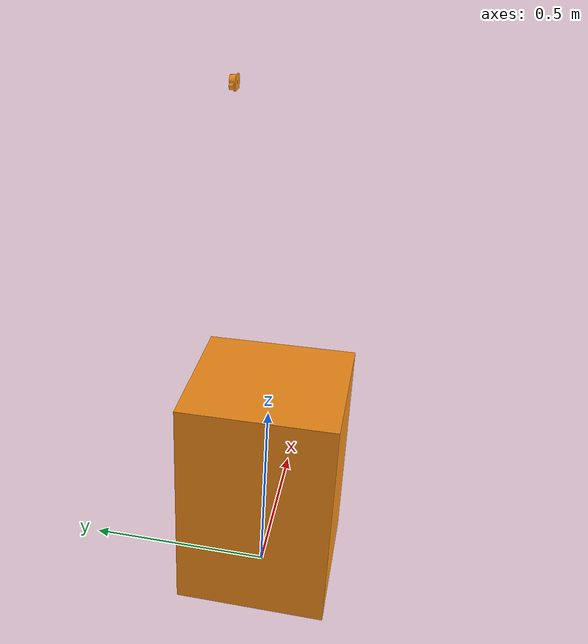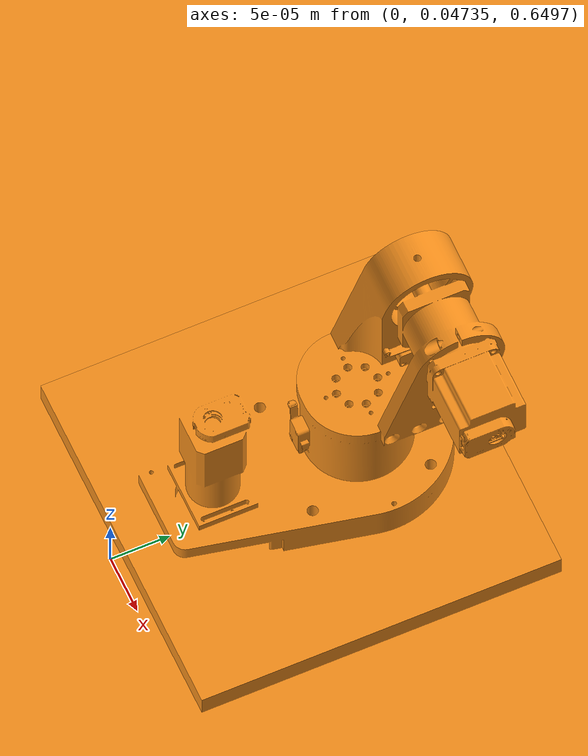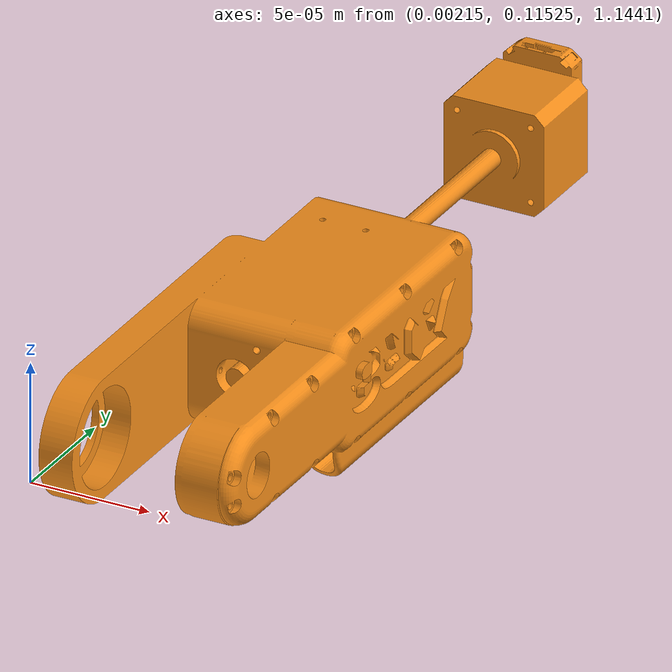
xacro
<?xml version="1.0"?>
<!-- Revolute-Revolute Manipulator -->
<robot name="AR3_Pedestal" xmlns:xacro="http://www.ros.org/wiki/xacro">

  <!-- Import all Gazebo-customization elements, including Gazebo colors -->
  <xacro:include filename="$(find ar3)/urdf/AR3.xacro" />

  <!-- Constants for robot dimensions -->
  <xacro:property name="PI" value="3.1415926535897931"/>
  <xacro:property name="mass" value=".4" /> <!-- arbitrary value for mass -->
  <xacro:property name="width" value="0.4" /> <!-- Square dimensions (widthxwidth) of beams -->
  <xacro:property name="height1" value=".6" />

  <!-- Used for fixing robot to Gazebo 'base_link' -->
  <link name="world"/>

  <!-- Robot Stand -->
  <link name="stand">
      <collision>
        <origin xyz="0 0 ${height1/2}" rpy="0 0 0"/>
        <geometry>
            <box size="${width} ${width} ${height1}"/>
        </geometry>
      </collision>
      <visual>
        <origin xyz="0 0 ${height1/2}" rpy="0 0 0"/>
        <geometry>
            <box size="${width} ${width} ${height1}"/>
        </geometry>
        <material name="orange"/>
      </visual>
      <inertial>
        <origin xyz="0 0 ${height1/2}" rpy="0 0 0"/>
        <mass value="200"/>
        <inertia
          ixx="${mass / 12.0 * (width*width + height1*height1)}" ixy="0.0" ixz="0.0"
          iyy="${mass / 12.0 * (height1*height1 + width*width)}" iyz="0.0"
          izz="${mass / 12.0 * (width*width + width*width)}"/>
      </inertial>
    </link>

  <!-- World to Stand -->
  <joint name="BaseJoint" type="fixed">
    <parent link="world"/>
    <child link="stand"/>
    <origin xyz="0 0 0" rpy="0 0 0"/>
    <axis xyz="0 0 1"/>
    <dynamics damping="0.7"/>
  </joint>

  <!-- Stand to Robot -->
 <joint name="Stand_to_Robot" type="fixed">
    <parent link="stand"/>
    <child link="base"/>
    <origin xyz="0 .04755873 ${height1 + .04975}" rpy="0 0 3.14159"/>
    <axis xyz="0 0 1"/>
    <dynamics damping="0.7"/>
  </joint>

<!-- END OF ROBOT -->
</robot>

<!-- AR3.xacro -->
<!-- Revolute-Revolute Manipulator -->
<robot name="ar3" xmlns:xacro="http://www.ros.org/wiki/xacro">

  <!-- Constants for robot dimensions -->
  <xacro:property name="PI" value="3.1415926535897931"/>
  <xacro:property name="mass" value="1.2" />
  <xacro:property name="width" value="0.1" />
  <xacro:property name="height1" value=".1397" />
  <xacro:property name="height2" value="0.206" />
  <xacro:property name="height3" value="0.227" />
  <xacro:property name="height4" value="0.1" />

  <!-- Joint offsets -->
  <xacro:property name="joint1_x" value="0"/>
  <xacro:property name="joint1_y" value="0"/>
  <xacro:property name="joint1_z" value="0"/>

  <xacro:property name="joint2_x" value=".0508"/>
  <xacro:property name="joint2_y" value="-.06786547"/>
  <xacro:property name="joint2_z" value=".13907540"/>

  <xacro:property name="joint3_x" value="-.015"/>
  <xacro:property name="joint3_y" value="0"/>
  <xacro:property name="joint3_z" value=".305"/>

  <xacro:property name="joint4_x" value="-.038"/>
  <xacro:property name="joint4_y" value="-.0503"/>
  <xacro:property name="joint4_z" value="0"/>

  <xacro:property name="joint5_x" value="0"/>
  <xacro:property name="joint5_y" value="-.172"/>
  <xacro:property name="joint5_z" value="0"/>

  <xacro:property name="joint6_x" value="0"/>
  <xacro:property name="joint6_y" value="-.0149"/>
  <xacro:property name="joint6_z" value="0"/>

  <!-- Import all Gazebo-customization elements, including Gazebo colors -->
  <xacro:include filename="$(find ar3)/urdf/AR3.gazebo" />
  <!-- Import Rviz colors -->
  <xacro:include filename="$(find ar3)/urdf/materials.xacro" />

  <!-- Used for fixing robot to Gazebo 'base_link' -->

  <!-- BASE -->
  <link name="base">
    <collision>
      <origin xyz="0 0 0" rpy="0 0 0"/>
      <geometry>
	      <mesh filename="$(find ar3)/urdf/meshes/Base.stl" scale=".001 .001 .001"/>
      </geometry>
    </collision>

    <visual>
      <origin xyz="0 0 0" rpy="0 0 0"/>
      <geometry>
	      <mesh filename="$(find ar3)/urdf/meshes/Base.stl" scale=".001 .001 .001"/>
      </geometry>
      <material name="orange"/>
    </visual>

    <inertial>
      <origin xyz="0 0 0" rpy="0 0 0"/>
      <mass value="${mass}"/>
      <inertia
	      ixx="${mass / 12.0 * (width*width + height1*height1)}" ixy="0.0" ixz="0.0"
	      iyy="${mass / 12.0 * (height1*height1 + width*width)}" iyz="0.0"
	      izz="${mass / 12.0 * (width*width + width*width)}"/>
    </inertial>
  </link>

  <!-- Robot to Environment-->

  <!-- Link 1 -->
  <link name="link1">
    <collision>
      <origin xyz="0 0 0" rpy="0 0 0"/>
      <geometry>
	      <mesh filename="$(find ar3)/urdf/meshes/Link1.stl" scale=".001 .001 .001"/>
      </geometry>
    </collision>

    <visual>
      <origin xyz="0 0 0" rpy="0 0 0"/>
      <geometry>
	      <mesh filename="$(find ar3)/urdf/meshes/Link1.stl" scale=".001 .001 .001"/>
      </geometry>
      <material name="orange"/>
    </visual>

    <inertial>
      <origin xyz="0 0 0" rpy="0 0 0"/>
      <mass value="${mass}"/>
      <inertia
	      ixx="${mass / 12.0 * (width*width + height1*height1)}" ixy="0.0" ixz="0.0"
	      iyy="${mass / 12.0 * (height1*height1 + width*width)}" iyz="0.0"
	      izz="${mass / 12.0 * (width*width + width*width)}"/>
    </inertial>
  </link>

  <!-- JOINT 1 -->
  <joint name="joint1" type="continuous">
    <parent link="base"/>
    <child link="link1"/>
    <origin xyz="${joint1_x} ${joint1_y} ${joint1_z}" rpy="0 0 0"/>
    <axis xyz="0 0 1"/>
    <dynamics damping="0.7"/>
    <limit lower="${-PI/2}" upper="${PI/2}" effort="30.0" velocity="10.0"/>
  </joint>

  <!-- Link 2 -->
  <link name="link2">
    <collision>
      <origin xyz="0 0 0" rpy="0 0 0"/>
      <geometry>
	      <mesh filename="$(find ar3)/urdf/meshes/Link2.stl" scale=".001 .001 .001"/>
      </geometry>
    </collision>

    <visual>
      <origin xyz="0 0 0" rpy="0 0 0"/>
      <geometry>
	      <mesh filename="$(find ar3)/urdf/meshes/Link2.stl" scale=".001 .001 .001"/>
      </geometry>
      <material name="blue"/>
    </visual>

    <inertial>
      <origin xyz="0 0 0" rpy="0 0 0"/>
      <mass value="${mass}"/>
      <inertia
	      ixx="${mass / 3.0 * (width*width + height2*height2)}" ixy="0.0" ixz="0.0"
	      iyy="${mass / 3.0 * (height2*height2 + width*width)}" iyz="0.0"
	      izz="${mass / 3.0 * (width*width + width*width)}"/>
    </inertial>
  </link>

  <!-- LEFT OFF HERE ON JOINT 2 Z -->
  <!-- JOINT 2 -->
  <joint name="joint2" type="continuous">
    <parent link="link1"/>
    <child link="link2"/>
    <origin xyz="${joint2_x} ${joint2_y} ${joint2_z}" rpy="0 0 0"/>
    <axis xyz="1 0 0"/>
    <dynamics damping="0.7"/>
    <limit lower="${-PI/2}" upper="${PI}" effort="30.0" velocity="10.0"/>
  </joint>

  <!-- Link 3 -->
  <link name="link3">
    <collision>
      <origin xyz="0 0 0" rpy="0 0 0"/>
      <geometry>
	      <mesh filename="$(find ar3)/urdf/meshes/Link3.stl" scale=".001 .001 .001"/>
      </geometry>
    </collision>

    <visual>
      <origin xyz="0 0 0" rpy="0 0 0"/>
      <geometry>
	      <mesh filename="$(find ar3)/urdf/meshes/Link3.stl" scale=".001 .001 .001"/>
      </geometry>
      <material name="orange"/>
    </visual>

    <inertial>
      <origin xyz="0 0 0" rpy="0 0 0"/>
      <mass value="${mass}"/>
      <inertia
	      ixx="${mass / 3.0 * (width*width + height3*height3)}" ixy="0.0" ixz="0.0"
	      iyy="${mass / 3.0 * (height3*height3 + width*width)}" iyz="0.0"
	      izz="${mass / 3.0 * (width*width + width*width)}"/>
    </inertial>
  </link>

  <!-- JOINT 3 -->
  <joint name="joint3" type="continuous">
    <parent link="link2"/>
    <child link="link3"/>
    <origin xyz="${joint3_x} ${joint3_y} ${joint3_z}" rpy="${-PI/2} 0 0"/>
    <axis xyz="1 0 0"/>
    <dynamics damping="0.7"/>
    <limit lower="${-PI/2}" upper="${PI/2}" effort="30.0" velocity="10.0"/>
  </joint>

  <!-- LINK 4-->
  <link name="link4">
    <collision>
      <origin xyz="0 0 0" rpy="0 0 0"/>
      <geometry>
	      <mesh filename="$(find ar3)/urdf/meshes/Link4.stl" scale=".001 .001 .001"/>
      </geometry>
    </collision>

    <visual>
      <origin xyz="0 0 0" rpy="0 0 0"/>
      <geometry>
	      <mesh filename="$(find ar3)/urdf/meshes/Link4.stl" scale=".001 .001 .001"/>
      </geometry>
      <material name="orange"/>
    </visual>

    <inertial>
      <origin xyz="0 0 0" rpy="0 0 0"/>
      <mass value="${mass}"/>
      <inertia
	      ixx="${mass / 12.0 * (width*width + height4*height4)}" ixy="0.0" ixz="0.0"
	      iyy="${mass / 12.0 * (height4*height4 + width*width)}" iyz="0.0"
	      izz="${mass / 12.0 * (width*width + width*width)}"/>
    </inertial>
  </link>

  <!-- JOINT 4 -->
  <joint name="joint4" type="continuous">
    <parent link="link3"/>
    <child link="link4"/>
    <origin xyz="${joint4_x} ${joint4_y} ${joint4_z}" rpy="0 0 0"/>
    <axis xyz="0 1 0"/>
    <dynamics damping="0.7"/>
    <limit lower="${-PI/2}" upper="${PI/2}" effort="30.0" velocity="10.0"/>
  </joint>

  <!-- LINK 5-->
  <link name="link5">
    <collision>
      <origin xyz="0 0 0" rpy="0 0 0"/>
      <geometry>
	      <mesh filename="$(find ar3)/urdf/meshes/Link5.stl" scale=".001 .001 .001"/>
      </geometry>
    </collision>

    <visual>
      <origin xyz="0 0 0" rpy="0 0 0"/>
      <geometry>
	      <mesh filename="$(find ar3)/urdf/meshes/Link5.stl" scale=".001 .001 .001"/>
      </geometry>
      <material name="orange"/>
    </visual>

    <inertial>
      <origin xyz="0 0 0" rpy="0 0 0"/>
      <mass value="${mass}"/>
      <inertia
	      ixx="${mass / 12.0 * (width*width + height4*height4)}" ixy="0.0" ixz="0.0"
	      iyy="${mass / 12.0 * (height4*height4 + width*width)}" iyz="0.0"
	      izz="${mass / 12.0 * (width*width + width*width)}"/>
    </inertial>
  </link>

  <!-- JOINT 5 -->
  <joint name="joint5" type="continuous">
    <parent link="link4"/>
    <child link="link5"/>
    <origin xyz="${joint5_x} ${joint5_y} ${joint5_z}" rpy="0 0 0"/>
    <axis xyz="1 0 0"/>
    <dynamics damping="0.7"/>
    <limit lower="${-PI/2}" upper="${PI/2}" effort="30.0" velocity="10.0"/>
  </joint>

  <!-- LINK 6-->
  <link name="link6">
    <collision>
      <origin xyz="0 0 0" rpy="0 0 0"/>
      <geometry>
	      <mesh filename="$(find ar3)/urdf/meshes/Link6.stl" scale=".001 .001 .001"/>
      </geometry>
    </collision>

    <visual>
      <origin xyz="0 0 0" rpy="0 0 0"/>
      <geometry>
	      <mesh filename="$(find ar3)/urdf/meshes/Link6.stl" scale=".001 .001 .001"/>
      </geometry>
      <material name="orange"/>
    </visual>

    <inertial>
      <origin xyz="0 0 0" rpy="0 0 0"/>
      <mass value="${mass}"/>
      <inertia
	      ixx="${mass / 12.0 * (width*width + height4*height4)}" ixy="0.0" ixz="0.0"
	      iyy="${mass / 12.0 * (height4*height4 + width*width)}" iyz="0.0"
	      izz="${mass / 12.0 * (width*width + width*width)}"/>
    </inertial>
  </link>

  <!-- JOINT 6 -->
  <joint name="joint6" type="continuous">
    <parent link="link5"/>
    <child link="link6"/>
    <origin xyz="${joint6_x} ${joint6_y} ${joint6_z}" rpy="0 0 0"/>
    <axis xyz="0 1 0"/>
    <dynamics damping="0.7"/>
  </joint>

  <!-- GAZEBO ROS CONTROL SPECIFIC INFORMATION -->
  <transmission name="tran1">
    <type>transmission_interface/SimpleTransmission</type>
    <joint name="joint1">
      <hardwareInterface>hardware_interface/EffortJointInterface</hardwareInterface>
    </joint>
    <actuator name="motor1">
      <hardwareInterface>hardware_interface/EffortJointInterface</hardwareInterface>
      <mechanicalReduction>1</mechanicalReduction>
    </actuator>
  </transmission>

  <transmission name="tran2">
    <type>transmission_interface/SimpleTransmission</type>
    <joint name="joint2">
      <hardwareInterface>hardware_interface/EffortJointInterface</hardwareInterface>
    </joint>
    <actuator name="motor2">
      <hardwareInterface>hardware_interface/EffortJointInterface</hardwareInterface>
      <mechanicalReduction>1</mechanicalReduction>
    </actuator>
  </transmission>

  <transmission name="tran3">
    <type>transmission_interface/SimpleTransmission</type>
    <joint name="joint3">
      <hardwareInterface>hardware_interface/EffortJointInterface</hardwareInterface>
    </joint>
    <actuator name="motor3">
      <hardwareInterface>hardware_interface/EffortJointInterface</hardwareInterface>
      <mechanicalReduction>1</mechanicalReduction>
    </actuator>
  </transmission>

  <transmission name="tran4">
    <type>transmission_interface/SimpleTransmission</type>
    <joint name="joint4">
      <hardwareInterface>hardware_interface/EffortJointInterface</hardwareInterface>
    </joint>
    <actuator name="motor4">
      <hardwareInterface>hardware_interface/EffortJointInterface</hardwareInterface>
      <mechanicalReduction>1</mechanicalReduction>
    </actuator>
  </transmission>

  <transmission name="tran5">
    <type>transmission_interface/SimpleTransmission</type>
    <joint name="joint5">
      <hardwareInterface>hardware_interface/EffortJointInterface</hardwareInterface>
    </joint>
    <actuator name="motor5">
      <hardwareInterface>hardware_interface/EffortJointInterface</hardwareInterface>
      <mechanicalReduction>1</mechanicalReduction>
    </actuator>
  </transmission>

  <transmission name="tran6">
    <type>transmission_interface/SimpleTransmission</type>
    <joint name="joint6">
      <hardwareInterface>hardware_interface/EffortJointInterface</hardwareInterface>
    </joint>
    <actuator name="motor6">
      <hardwareInterface>hardware_interface/EffortJointInterface</hardwareInterface>
      <mechanicalReduction>1</mechanicalReduction>
    </actuator>
  </transmission>

<!-- END OF ROBOT -->
</robot>
